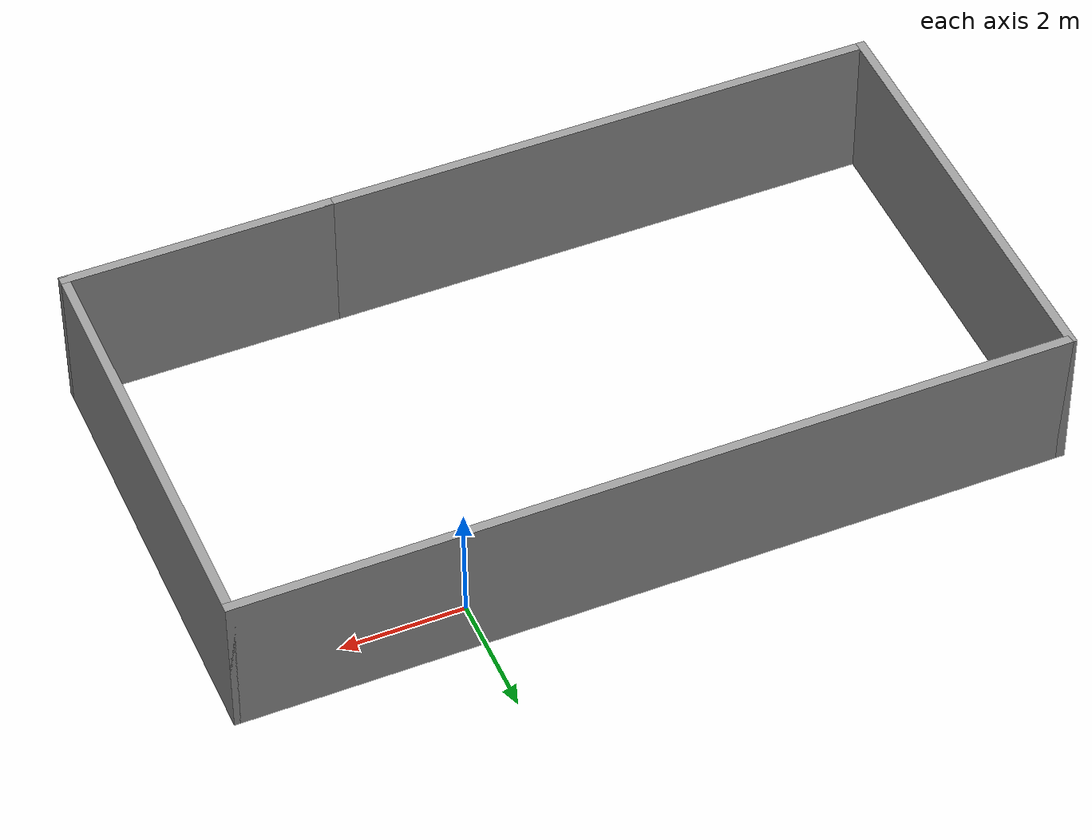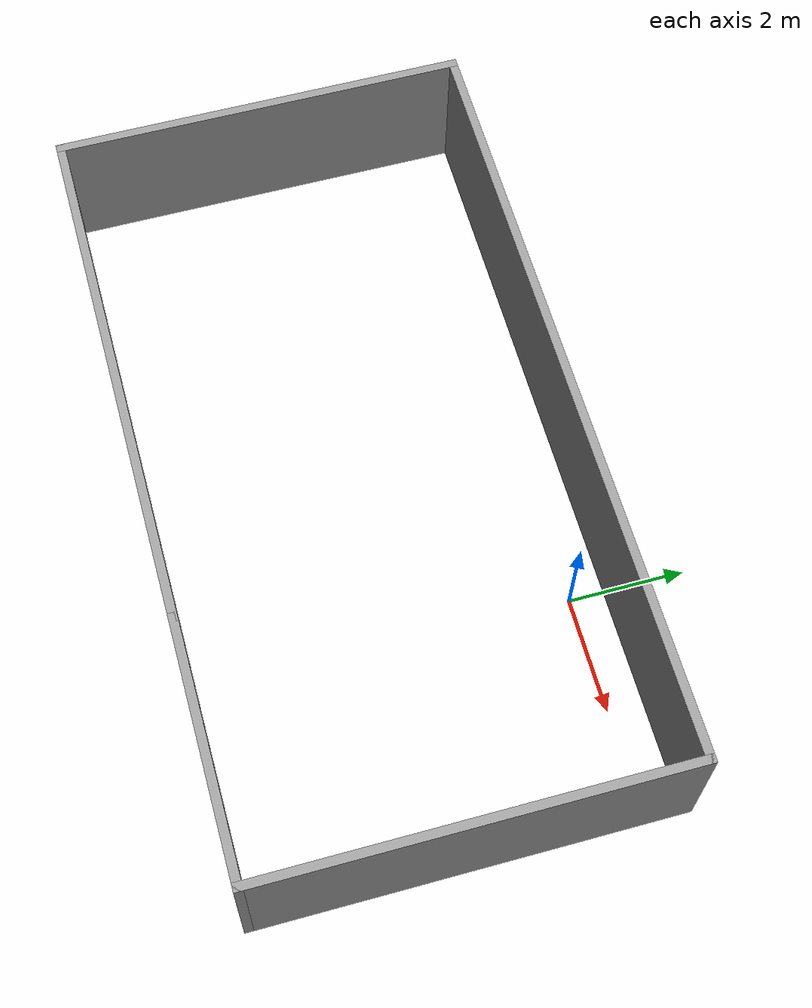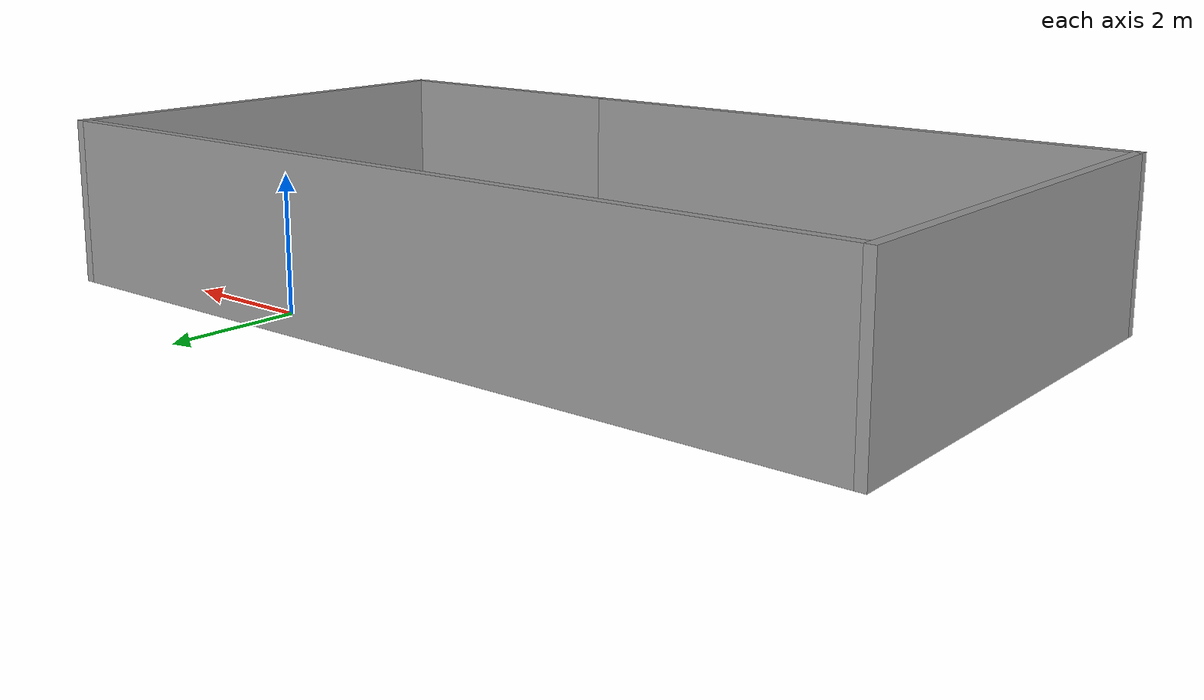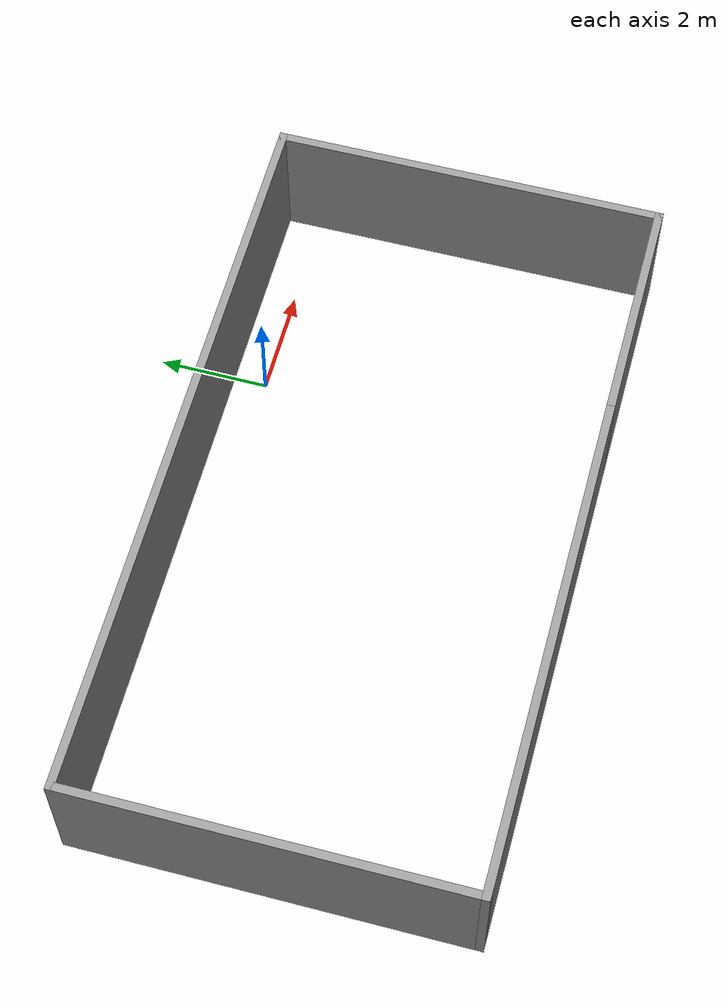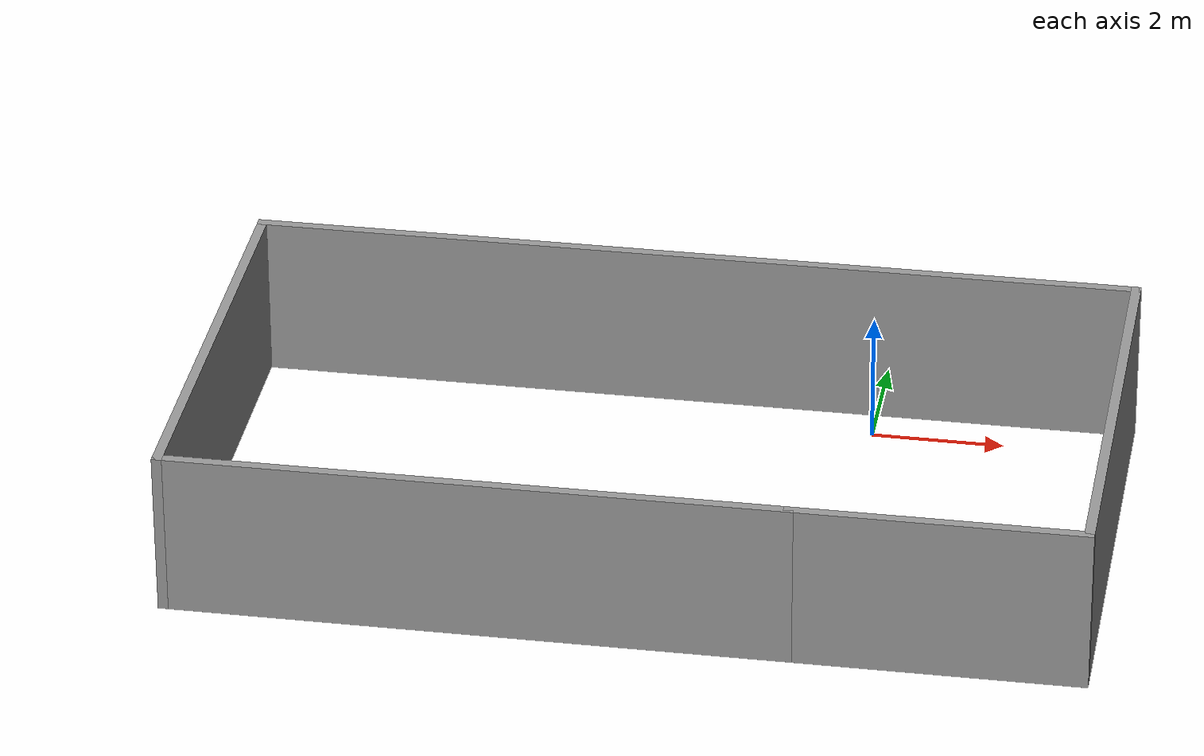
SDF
<?xml version='1.0'?>
<sdf version='1.7'>
  <model name='myroom'>
    <pose>-2.82381 -2.87357 0 0 -0 0</pose>
    <link name='Wall_10'>
      <collision name='Wall_10_Collision'>
        <geometry>
          <box>
            <size>4.4 0.15 2.5</size>
          </box>
        </geometry>
        <pose>0 0 1.25 0 -0 0</pose>
      </collision>
      <visual name='Wall_10_Visual'>
        <pose>0 0 1.25 0 -0 0</pose>
        <geometry>
          <box>
            <size>4.4 0.15 2.5</size>
          </box>
        </geometry>
        <material>
          <script>
            <uri>file://media/materials/scripts/gazebo.material</uri>
            <name>Gazebo/Grey</name>
          </script>
          <ambient>1 1 1 1</ambient>
        </material>
        <meta>
          <layer>0</layer>
        </meta>
      </visual>
      <pose>4.55 -3.55 0 0 -0 3.14159</pose>
    </link>
    <link name='Wall_6'>
      <collision name='Wall_6_Collision'>
        <geometry>
          <box>
            <size>9.25 0.15 2.5</size>
          </box>
        </geometry>
        <pose>0 0 1.25 0 -0 0</pose>
      </collision>
      <visual name='Wall_6_Visual'>
        <pose>0 0 1.25 0 -0 0</pose>
        <geometry>
          <box>
            <size>9.25 0.15 2.5</size>
          </box>
        </geometry>
        <material>
          <script>
            <uri>file://media/materials/scripts/gazebo.material</uri>
            <name>Gazebo/Grey</name>
          </script>
          <ambient>1 1 1 1</ambient>
        </material>
        <meta>
          <layer>0</layer>
        </meta>
      </visual>
      <pose>-2.125 -3.55 0 0 -0 3.14159</pose>
    </link>
    <link name='Wall_7'>
      <collision name='Wall_7_Collision'>
        <geometry>
          <box>
            <size>7.25 0.15 2.5</size>
          </box>
        </geometry>
        <pose>0 0 1.25 0 -0 0</pose>
      </collision>
      <visual name='Wall_7_Visual'>
        <pose>0 0 1.25 0 -0 0</pose>
        <geometry>
          <box>
            <size>7.25 0.15 2.5</size>
          </box>
        </geometry>
        <material>
          <script>
            <uri>file://media/materials/scripts/gazebo.material</uri>
            <name>Gazebo/Grey</name>
          </script>
          <ambient>1 1 1 1</ambient>
        </material>
        <meta>
          <layer>0</layer>
        </meta>
      </visual>
      <pose>-6.675 0 0 0 -0 1.5708</pose>
    </link>
    <link name='Wall_8'>
      <collision name='Wall_8_Collision'>
        <geometry>
          <box>
            <size>13.5 0.15 2.5</size>
          </box>
        </geometry>
        <pose>0 0 1.25 0 -0 0</pose>
      </collision>
      <visual name='Wall_8_Visual'>
        <pose>0 0 1.25 0 -0 0</pose>
        <geometry>
          <box>
            <size>13.5 0.15 2.5</size>
          </box>
        </geometry>
        <material>
          <script>
            <uri>file://media/materials/scripts/gazebo.material</uri>
            <name>Gazebo/Grey</name>
          </script>
          <ambient>1 1 1 1</ambient>
        </material>
        <meta>
          <layer>0</layer>
        </meta>
      </visual>
      <pose>0 3.55 0 0 -0 0</pose>
    </link>
    <link name='Wall_9'>
      <collision name='Wall_9_Collision'>
        <geometry>
          <box>
            <size>7.25 0.15 2.5</size>
          </box>
        </geometry>
        <pose>0 0 1.25 0 -0 0</pose>
      </collision>
      <visual name='Wall_9_Visual'>
        <pose>0 0 1.25 0 -0 0</pose>
        <geometry>
          <box>
            <size>7.25 0.15 2.5</size>
          </box>
        </geometry>
        <material>
          <script>
            <uri>file://media/materials/scripts/gazebo.material</uri>
            <name>Gazebo/Grey</name>
          </script>
          <ambient>1 1 1 1</ambient>
        </material>
        <meta>
          <layer>0</layer>
        </meta>
      </visual>
      <pose>6.675 0 0 0 -0 -1.5708</pose>
    </link>
    <static>1</static>
  </model>
</sdf>
